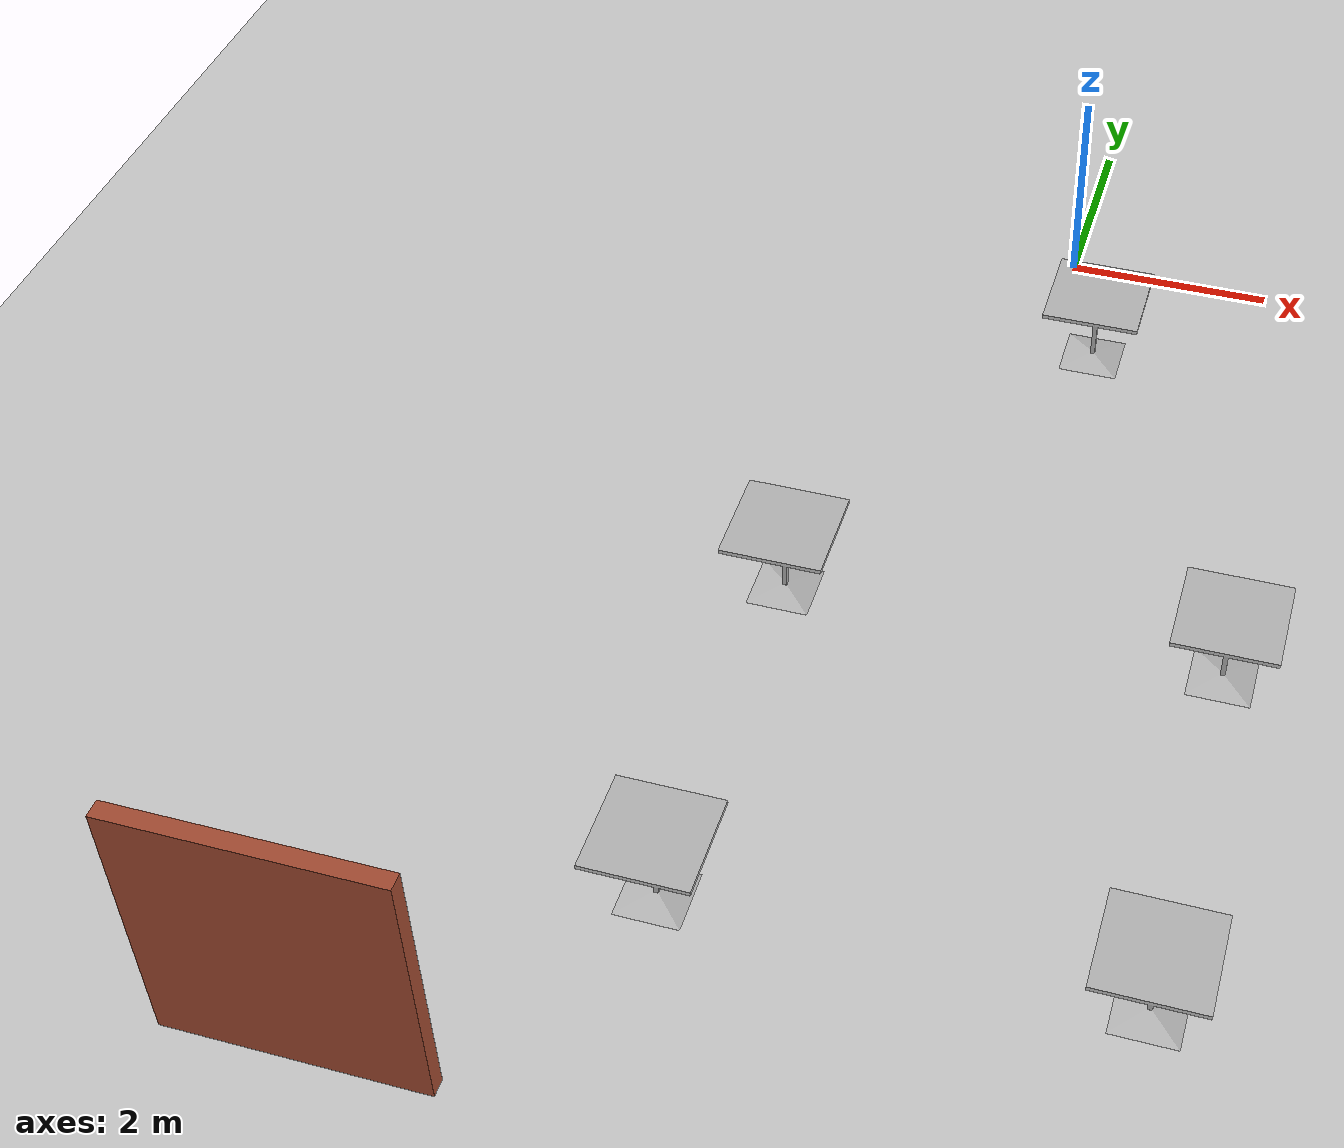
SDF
<sdf version="1.6">
 <world name="default">
  <light name="sun" type="directional">
   <pose>0 0 10 0 -0 0</pose>
   <diffuse>0.8 0.8 0.8 1</diffuse>
   <specular>0.2 0.2 0.2 1</specular>
   <attenuation>
    <range>1000</range>
    <constant>0.9</constant>
    <linear>0.01</linear>
    <quadratic>0.001</quadratic>
   </attenuation>
   <direction>0 0.5 -0.9</direction>
  </light>
  <light name="point_light" type="point">
   <pose>0 -0.377195 6.59868 0 -0 0</pose>
   <diffuse>0.784314 0.784314 0.784314 1</diffuse>
   <specular>0.0980392 0.0980392 0.0980392 1</specular>
   <attenuation>
    <range>50</range>
    <constant>0.8</constant>
    <linear>0</linear>
    <quadratic>0.001</quadratic>
   </attenuation>
   <cast_shadows>0</cast_shadows>
   <direction>0 0 -1</direction>
  </light>
  <model name="ground_plane">
   <static>1</static>
   <link name="link">
    <collision name="collision">
     <geometry><plane><normal>0 0 1</normal><size>100 100</size></plane></geometry>
     <surface>
      <contact><collide_bitmask>65535</collide_bitmask></contact>
      <friction><ode><mu>100</mu><mu2>50</mu2></ode></friction>
     </surface>
    </collision>
    <visual name="visual">
     <cast_shadows>0</cast_shadows>
     <geometry><plane><normal>0 0 1</normal><size>100 100</size></plane></geometry>
     <material>
      <script><uri>file://media/materials/scripts/gazebo.material</uri><name>Gazebo/Grey</name></script>
     </material>
    </visual>
   </link>
  </model>
  <model name="table1">
   <static>1</static>
   <link name="link">
    <collision name="surface">
     <pose>0 0 0.755 0 -0 0</pose>
     <geometry><box><size>0.913 0.913 0.04</size></box></geometry>
    </collision>
    <collision name="column">
     <pose>0 0 0.37 0 -0 0</pose>
     <geometry><box><size>0.042 0.042 0.74</size></box></geometry>
    </collision>
    <collision name="base">
     <pose>0 0 0.02 0 -0 0</pose>
     <geometry><box><size>0.56 0.56 0.04</size></box></geometry>
    </collision>
    <visual name="visual">
     <geometry><mesh><uri>model://cafe_table/meshes/cafe_table.dae</uri></mesh></geometry>
    </visual>
   </link>
   <pose>0.5 -1.6 0.2 0 -0 0</pose>
  </model>
  <model name="table2">
   <static>1</static>
   <link name="link">
    <collision name="surface">
     <pose>0 0 0.755 0 -0 0</pose>
     <geometry><box><size>0.913 0.913 0.04</size></box></geometry>
    </collision>
    <collision name="column">
     <pose>0 0 0.37 0 -0 0</pose>
     <geometry><box><size>0.042 0.042 0.74</size></box></geometry>
    </collision>
    <collision name="base">
     <pose>0 0 0.02 0 -0 0</pose>
     <geometry><box><size>0.56 0.56 0.04</size></box></geometry>
    </collision>
    <visual name="visual">
     <geometry><mesh><uri>model://cafe_table/meshes/cafe_table.dae</uri></mesh></geometry>
    </visual>
   </link>
   <pose>2.4 -5.5 0.2 0 -0 0</pose>
  </model>
  <model name="table3">
   <static>1</static>
   <link name="link">
    <collision name="surface">
     <pose>0 0 0.755 0 -0 0</pose>
     <geometry><box><size>0.913 0.913 0.04</size></box></geometry>
    </collision>
    <collision name="column">
     <pose>0 0 0.37 0 -0 0</pose>
     <geometry><box><size>0.042 0.042 0.74</size></box></geometry>
    </collision>
    <collision name="base">
     <pose>0 0 0.02 0 -0 0</pose>
     <geometry><box><size>0.56 0.56 0.04</size></box></geometry>
    </collision>
    <visual name="visual">
     <geometry><mesh><uri>model://cafe_table/meshes/cafe_table.dae</uri></mesh></geometry>
    </visual>
   </link>
   <pose>-1.5 -5.5 0.2 0 -0 0</pose>
  </model>
  <model name="table4">
   <static>1</static>
   <link name="link">
    <collision name="surface">
     <pose>0 0 0.755 0 -0 0</pose>
     <geometry><box><size>0.913 0.913 0.04</size></box></geometry>
    </collision>
    <collision name="column">
     <pose>0 0 0.37 0 -0 0</pose>
     <geometry><box><size>0.042 0.042 0.74</size></box></geometry>
    </collision>
    <collision name="base">
     <pose>0 0 0.02 0 -0 0</pose>
     <geometry><box><size>0.56 0.56 0.04</size></box></geometry>
    </collision>
    <visual name="visual">
     <geometry><mesh><uri>model://cafe_table/meshes/cafe_table.dae</uri></mesh></geometry>
    </visual>
   </link>
   <pose>2.4 -9 0.2 0 -0 0</pose>
  </model>
  <model name="table5">
   <static>1</static>
   <link name="link">
    <collision name="surface">
     <pose>0 0 0.755 0 -0 0</pose>
     <geometry><box><size>0.913 0.913 0.04</size></box></geometry>
    </collision>
    <collision name="column">
     <pose>0 0 0.37 0 -0 0</pose>
     <geometry><box><size>0.042 0.042 0.74</size></box></geometry>
    </collision>
    <collision name="base">
     <pose>0 0 0.02 0 -0 0</pose>
     <geometry><box><size>0.56 0.56 0.04</size></box></geometry>
    </collision>
    <visual name="visual">
     <geometry><mesh><uri>model://cafe_table/meshes/cafe_table.dae</uri></mesh></geometry>
    </visual>
   </link>
   <pose>-1.5 -9 0.2 0 -0 0</pose>
  </model>
  <gravity>0 0 -9.8</gravity>
  <magnetic_field>6e-06 2.3e-05 -4.2e-05</magnetic_field>
  <atmosphere type="adiabatic"/>
  <physics name="default_physics" default="0" type="ode">
   <max_step_size>0.001</max_step_size>
   <real_time_factor>1</real_time_factor>
   <real_time_update_rate>1000</real_time_update_rate>
  </physics>
  <scene><ambient>0.4 0.4 0.4 1</ambient><background>0.7 0.7 0.7 1</background><shadows>1</shadows></scene>
  <audio><device>default</device></audio>
  <spherical_coordinates>
   <surface_model>EARTH_WGS84</surface_model>
   <latitude_deg>0</latitude_deg>
   <longitude_deg>0</longitude_deg>
   <elevation>0</elevation>
   <heading_deg>0</heading_deg>
  </spherical_coordinates>
  <model name="brick_wall">
   <pose>-3.66 -10.98 0 0 -0 0</pose>
   <link name="Wall_0">
    <collision name="Wall_0_Collision">
     <geometry><box><size>2.25 0.15 2.5</size></box></geometry>
     <pose>0 0 1.25 0 -0 0</pose>
    </collision>
    <visual name="Wall_0_Visual">
     <pose>0 0 1.25 0 -0 0</pose>
     <geometry><box><size>2.25 0.15 2.5</size></box></geometry>
     <material>
      <script><uri>file://media/materials/scripts/gazebo.material</uri><name>Gazebo/Bricks</name></script>
      <ambient>1 1 1 1</ambient>
     </material>
     <meta><layer>0</layer></meta>
    </visual>
   </link>
   <static>1</static>
  </model>
 </world>
</sdf>
